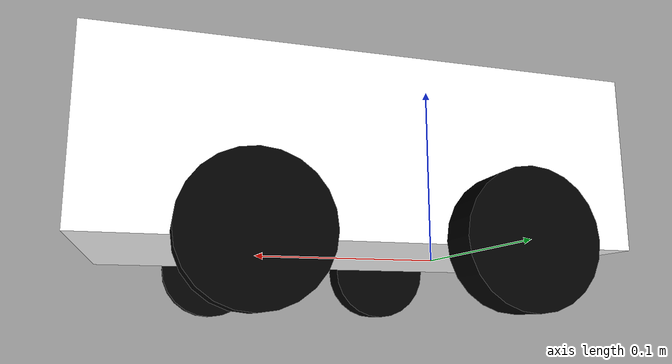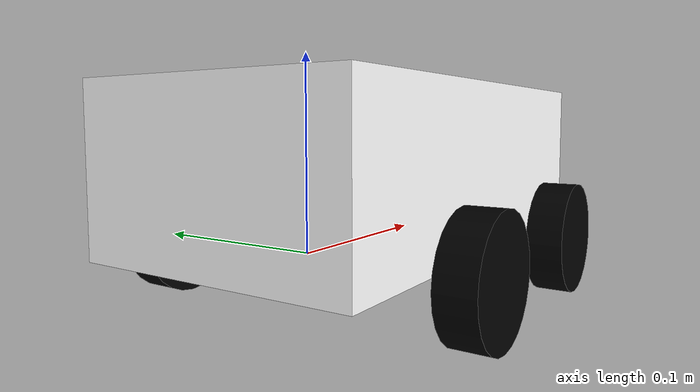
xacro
<?xml version="1.0"?>
<robot xmlns:xacro="http://www.ros.org/wiki/xacro"  >
    <xacro:include filename="inertial_macros.xacro"/>
    <material name="white">
        <color rgba="1.0 1.0 1.0 1.0"/>
    </material>

    <material name="black">
        <color rgba="0.0 0.0 0.0 1.0"/>
    </material>

    <material name="red">
        <color rgba="1.0 0.0 0.0 1.0"/>
    </material>
    <material name="yellow">
        <color rgba="1.0 1.0 0.0 1.0"/>
    </material>

    <material name="blue">
        <color rgba="0.0 1.0 1.0 1.0"/>
    </material>

    <material name="green">
        <color rgba="0.0 1.0 0.0 1.0"/>
    </material>
<link name="base_link">

</link>

<joint name="chassis_joint" type="fixed">
    <parent link="base_link"/>
    <child link="chassis"/>
    <origin xyz="-0.0705585 0.0 0.0"/>
</joint>
<link name="chassis">
    <visual>
        <origin xyz="0.128089 0 0.0431217"/>
        <geometry>
            <box size="0.256178 0.149629 0.0862434"/>
        </geometry>
        <material name="white"/>
    </visual>
    <collision>
        <origin xyz="0.128089 0 0.0431217"/>
        <geometry>
            <box size="0.256178 0.149629 0.0862434"/>
        </geometry>
    </collision>
    <xacro:inertial_box mass="0.5" x="0.256178" y="0.149629" z="0.0862434">
        <origin xyz="0.128089 0 0.0431217" rpy="0.0 0.0 0.0"/>
    </xacro:inertial_box>
</link>
<!-- LEFT WHEEL 1 -->

<joint name="left_wheel_joint" type="continuous">
    <parent link="base_link"/>
    <child link="left_wheel"/>
    <origin xyz="0 0.0941415 0" rpy="-${pi/2} 0 0"/>
    <axis xyz="0 0 1"/>
</joint>

<link name="left_wheel">
    <visual>
        <geometry>
            <cylinder length="0.019327" radius="0.0307448" />
        </geometry>
        <material name="black"/>
    </visual>
    <collision>
        <geometry>
            <cylinder length="0.019327" radius="0.0307448" />
        </geometry>
    </collision>
    <xacro:inertial_cylinder mass="0.05" length="0.019327" radius="0.0307448">
        <origin xyz="0 0 0" rpy="0.0 0.0 0.0"/>
    </xacro:inertial_cylinder>

</link>

<!-- RIGHT WHEEL 1-->

<joint name="right_wheel_joint" type="continuous">
    <parent link="base_link"/>
    <child link="right_wheel"/>
    <origin xyz="0 -0.0941415 0" rpy="${pi/2} 0 0"/>
    <axis xyz="0 0 -1"/>
</joint>

<link name="right_wheel">
    <visual>
        <geometry>
            <cylinder length="0.019327" radius="0.0307448" />
        </geometry>
        <material name="black"/>
    </visual>
    <collision>
        <geometry>
            <cylinder length="0.019327" radius="0.0307448" />
        </geometry>
    </collision>
    <xacro:inertial_cylinder mass="0.05" length="0.019327" radius="0.0307448">
        <origin xyz="0 0 0" rpy="0.0 0.0 0.0"/>
    </xacro:inertial_cylinder>
</link>

<!-- LEFT WHEEL 2-->

<joint name="left_wheel2_joint" type="continuous">
    <parent link="base_link"/>
    <child link="left_wheel2"/>
    <origin xyz="0.115061 0.0941415 0" rpy="-${pi/2} 0 0"/>
    <axis xyz="0 0 1"/>
</joint>

<link name="left_wheel2">
    <visual>
        <geometry>
            <cylinder length="0.019327" radius="0.0307448" />
        </geometry>
        <material name="black"/>
    </visual>
    <collision>
        <geometry>
            <cylinder length="0.019327" radius="0.0307448" />
        </geometry>
    </collision>
    <xacro:inertial_cylinder mass="0.05" length="0.019327" radius="0.0307448">
        <origin xyz="0 0 0" rpy="0.0 0.0 0.0"/>
    </xacro:inertial_cylinder>
</link>

<!-- RIGHT WHEEL 2-->

<joint name="right_wheel2_joint" type="continuous">
    <parent link="base_link"/>
    <child link="right_wheel2"/>
    <origin xyz="0.115061 -0.0941415 0" rpy="${pi/2} 0 0"/>
    <axis xyz="0 0 -1"/>
</joint>

<link name="right_wheel2">
    <visual>
        <geometry>
            <cylinder length="0.019327" radius="0.0307448" />
        </geometry>
        <material name="black"/>
    </visual>
    <collision>
        <geometry>
            <cylinder length="0.019327" radius="0.0307448" />
        </geometry>
    </collision>
    <xacro:inertial_cylinder mass="0.05" length="0.019327" radius="0.0307448">
        <origin xyz="0 0 0" rpy="0.0 0.0 0.0"/>
    </xacro:inertial_cylinder>
</link>

</robot>
